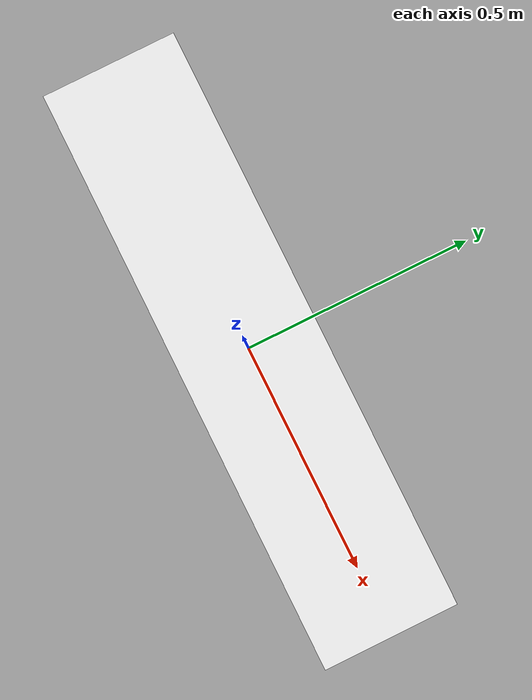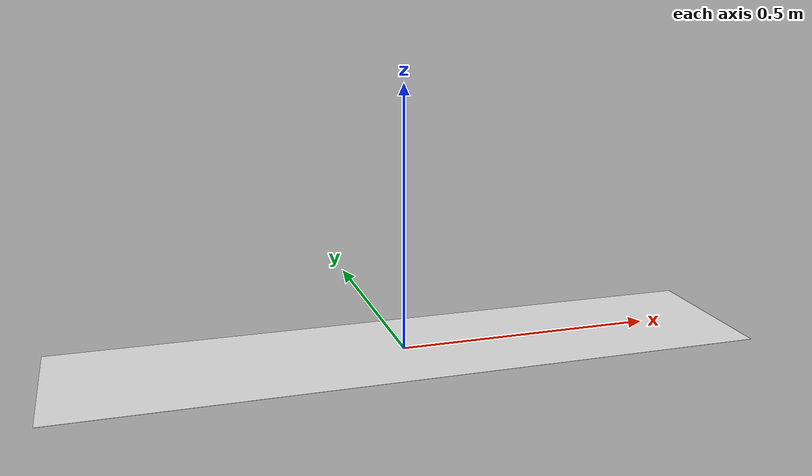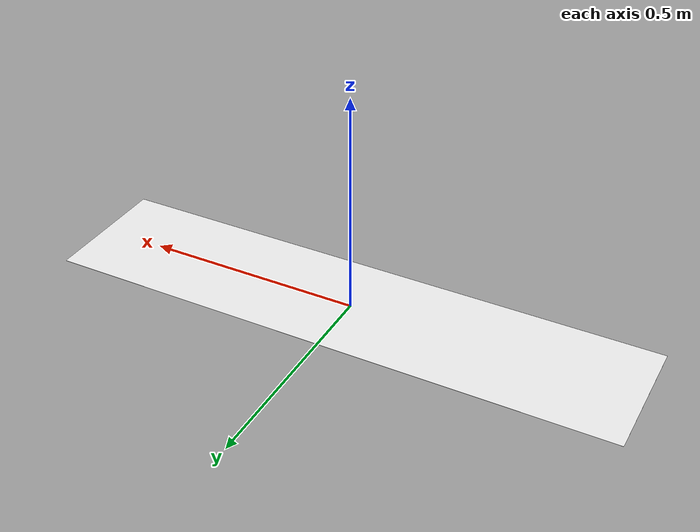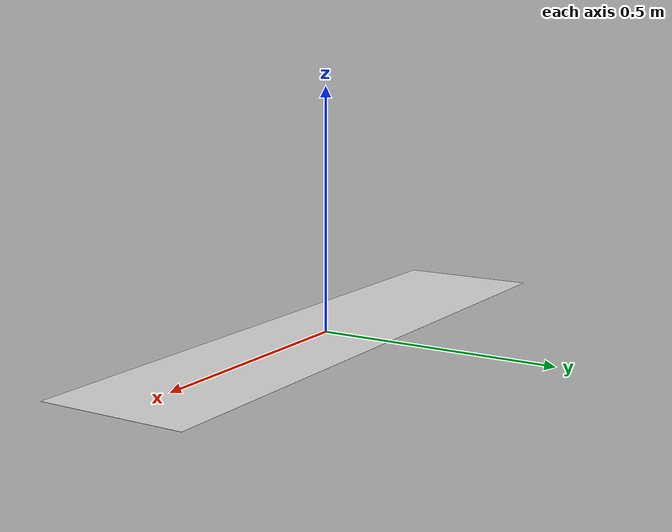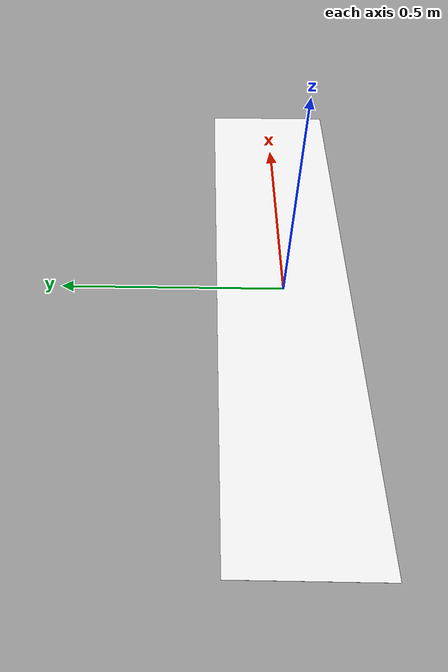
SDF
<?xml version="1.0" encoding="UTF-8"?>
<sdf version='1.9'>
  <model name='license_1'>
    <static>true</static>
    <pose>0 0 0.001 0 0 0</pose>
    <link name='base'>
      <visual name='base_visual'>
        <geometry>
          <plane>
            <normal>0 0 1</normal>
            <size>1.31 0.3</size>
          </plane>
        </geometry>
        <material>
          <diffuse>1 1 1 1</diffuse>
          <specular>0.4 0.4 0.4 1</specular>
          <pbr>
            <metal>
              <albedo_map>model://license_1/license_1.png</albedo_map>
            </metal>
          </pbr>
        </material>
      </visual>
    </link>
  </model>
</sdf>
